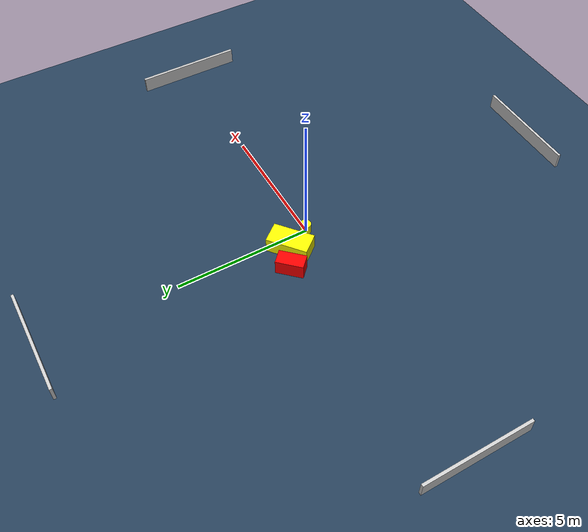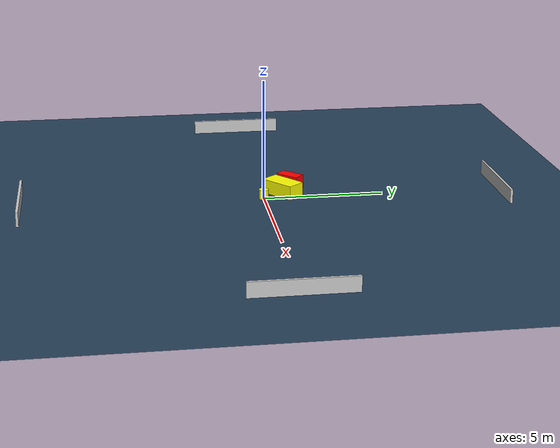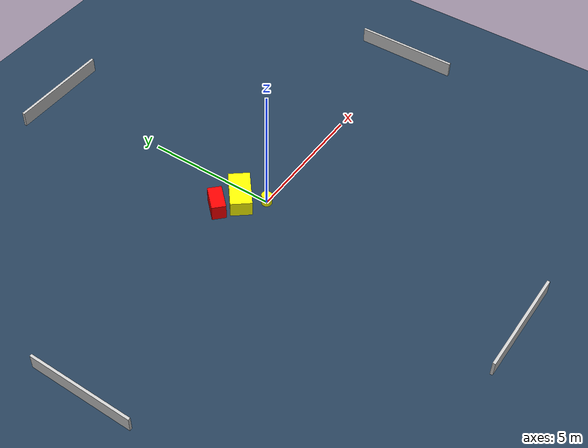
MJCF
<?xml version="1.0" ?>
<mujoco model="generated_environment">
  <option timestep="0.01" integrator="RK4" cone="elliptic"/>
  <default>
    <geom density="1"/>
  </default>
  <asset>
    <texture builtin="gradient" height="3072" name="skybox" rgb1="0.3 0.5 0.7" rgb2="0 0 0" type="skybox" width="512"/>
    <texture builtin="checker" height="300" name="groundplane" rgb1="0.2 0.3 0.4" rgb2="0.1 0.2 0.3" type="2d" width="300"/>
    <material name="groundplane" reflectance="0.2" texrepeat="5 5" texture="groundplane"/>
  </asset>
  <worldbody>
    <light dir="0 0 -1" directional="true" pos="0 0 1.5"/>
    <geom condim="3" friction="0.5 0.005 0.001" material="groundplane" name="floor" pos="0 0 0" size="0 0 0.05" type="plane"/>
    <body name="walls">
      <geom name="wall_1" condim="4" pos="-10.0 0.0 0.3" rgba="0.800000011920929 0.800000011920929 0.800000011920929 1.0" size="0.05 2.0 0.3" type="box"/>
      <geom name="wall_2" condim="4" pos="10.0 0.0 0.3" rgba="0.800000011920929 0.800000011920929 0.800000011920929 1.0" size="0.05 2.0 0.3" type="box"/>
      <geom name="wall_3" condim="4" pos="0.0 -10.0 0.3" rgba="0.800000011920929 0.800000011920929 0.800000011920929 1.0" size="2.0 0.05 0.3" type="box"/>
      <geom name="wall_4" condim="4" pos="0.0 10.0 0.3" rgba="0.800000011920929 0.800000011920929 0.800000011920929 1.0" size="2.0 0.05 0.3" type="box"/>
    </body>
    <body name="robot">
      <joint name="joint_x" type="slide" pos="0 0 0" axis="1 0 0"/>
      <joint name="joint_y" type="slide" pos="0 0 0" axis="0 1 0"/>
      <geom name="robot" type="cylinder" pos="0.0 0.0 0.2" size="0.2 0.2 0.0" mass="5.0" friction="1.0 0.005 0.0001" condim="4" rgba="1.0 1.0 0.0 1.0"/>
    </body>
    <body name="obstacle_1_movable">
      <geom name="obstacle_1_movable" condim="4" pos="-0.4333332427476027 0.8661690778520698 0.3" euler="0 0 309.20204635734757" friction="0.0 0.005 0.001" rgba="1.0 1.0 0.0 1.0" size="0.400175355628706 0.7626688401672774 0.3" type="box" mass="0.1"/>
      <joint type="free"/>
    </body>
    <body name="obstacle_2_static">
      <geom name="obstacle_2_static" condim="4" pos="-1.2638233587974057 1.297297056842269 0.3" euler="0 0 46.087306005510456" friction="0.0 0.005 0.001" rgba="1.0 0.0 0.0 1.0" size="0.501820964236789 0.2647127957582915 0.3" type="box"/>
    </body>
  </worldbody>
  <actuator>
    <motor name="actuator_x" joint="joint_x" gear="1" ctrlrange="-1 1"/>
    <motor name="actuator_y" joint="joint_y" gear="1" ctrlrange="-1 1"/>
  </actuator>
</mujoco>
